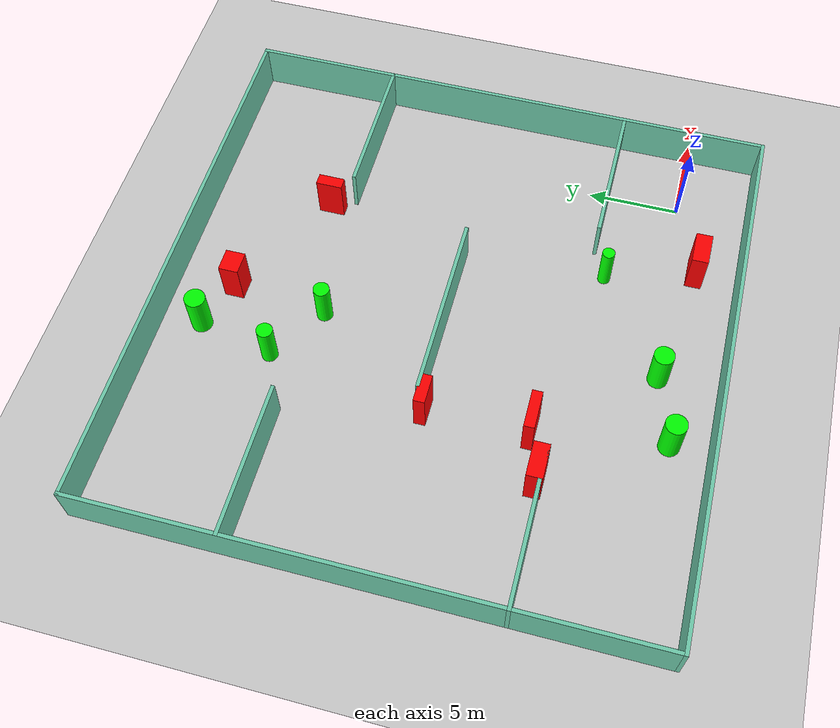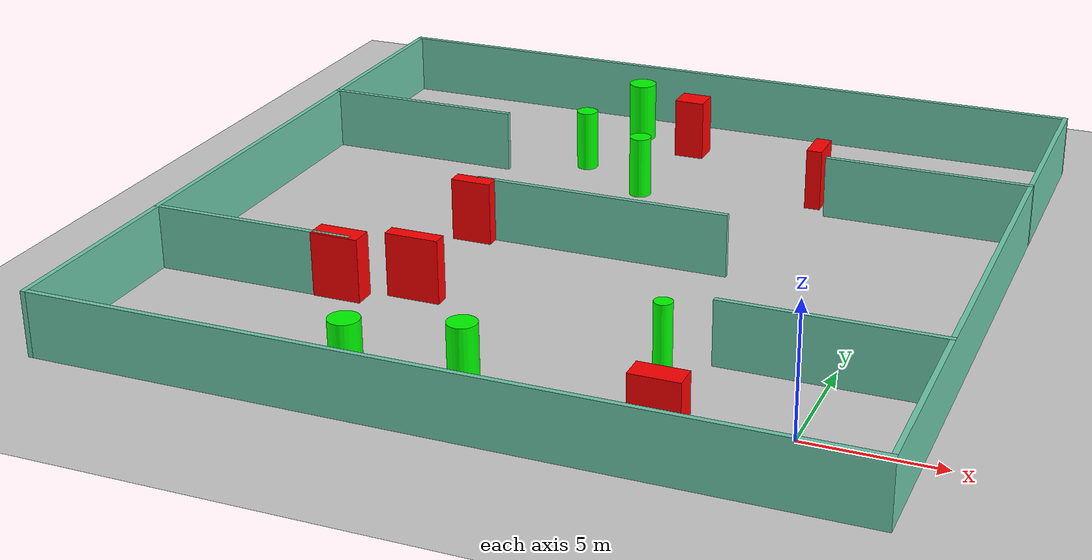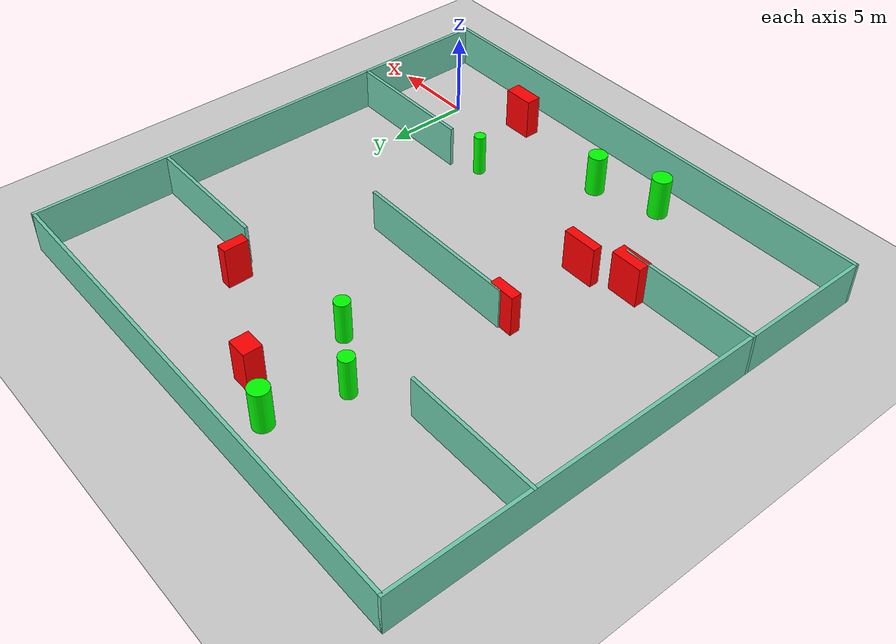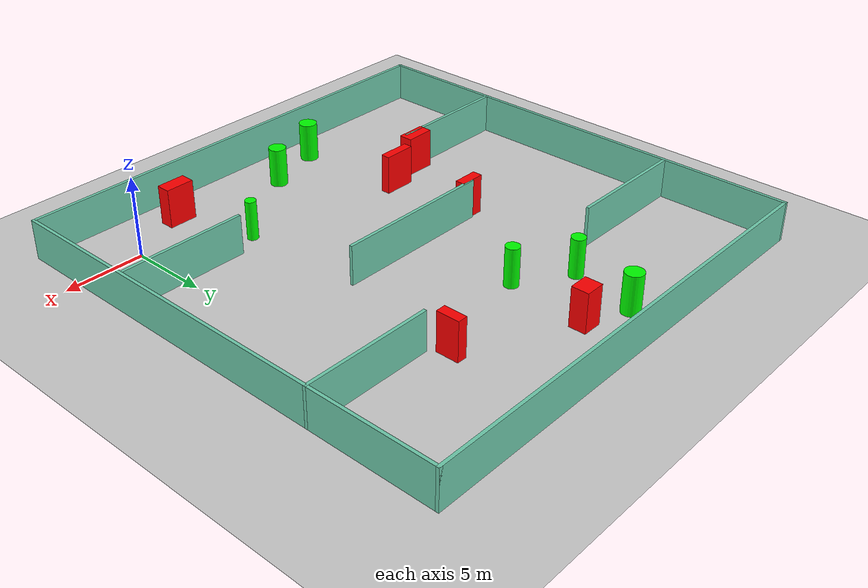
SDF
<sdf version="1.7">
 <world name="default">
  <light name="sun" type="directional">
   <pose>0 0 10 0 -0 0</pose>
   <diffuse>0.8 0.8 0.8 1</diffuse>
   <specular>0.2 0.2 0.2 1</specular>
   <attenuation>
    <range>1000</range>
    <constant>0.9</constant>
    <linear>0.01</linear>
    <quadratic>0.001</quadratic>
   </attenuation>
   <direction>-0.5 0.1 -0.9</direction>
   <spot><inner_angle>0</inner_angle><outer_angle>0</outer_angle><falloff>0</falloff></spot>
  </light>
  <model name="ground_plane">
   <static>1</static>
   <link name="link">
    <collision name="collision">
     <geometry><plane><normal>0 0 1</normal><size>100 100</size></plane></geometry>
     <surface>
      <contact><collide_bitmask>65535</collide_bitmask></contact>
      <friction><ode><mu>100</mu><mu2>50</mu2></ode></friction>
     </surface>
    </collision>
    <visual name="visual">
     <cast_shadows>0</cast_shadows>
     <geometry><plane><normal>0 0 1</normal><size>100 100</size></plane></geometry>
     <material>
      <script><uri>file://media/materials/scripts/gazebo.material</uri><name>Gazebo/Grey</name></script>
     </material>
    </visual>
   </link>
  </model>
  <gravity>0 0 -9.8</gravity>
  <magnetic_field>6e-06 2.3e-05 -4.2e-05</magnetic_field>
  <atmosphere type="adiabatic"/>
  <physics type="ode">
   <max_step_size>0.001</max_step_size>
   <real_time_factor>1</real_time_factor>
   <real_time_update_rate>1000</real_time_update_rate>
  </physics>
  <scene><ambient>0.4 0.4 0.4 1</ambient><background>0.7 0.7 0.7 1</background><shadows>1</shadows></scene>
  <spherical_coordinates>
   <surface_model>EARTH_WGS84</surface_model>
   <latitude_deg>0</latitude_deg>
   <longitude_deg>0</longitude_deg>
   <elevation>0</elevation>
   <heading_deg>0</heading_deg>
  </spherical_coordinates>
  <model name="my_base_walls">
   <link name="Wall_10">
    <collision name="Wall_10_Collision">
     <geometry><box><size>8.2 0.2 2.5</size></box></geometry>
     <pose>0 0 1.25 0 -0 0</pose>
    </collision>
    <visual name="Wall_10_Visual">
     <pose>0 0 1.25 0 -0 0</pose>
     <geometry><box><size>8.2 0.2 2.5</size></box></geometry>
     <material>
      <script><uri>file://media/materials/scripts/gazebo.material</uri><name>Gazebo/Grey</name></script>
      <ambient>0.435294 0.796078 0.67451 1</ambient>
     </material>
     <meta><layer>0</layer></meta>
    </visual>
    <pose>-11 -7 0 0 -0 0</pose>
   </link>
   <link name="Wall_12">
    <collision name="Wall_12_Collision">
     <geometry><box><size>8.2 0.2 2.5</size></box></geometry>
     <pose>0 0 1.25 0 -0 0</pose>
    </collision>
    <visual name="Wall_12_Visual">
     <pose>0 0 1.25 0 -0 0</pose>
     <geometry><box><size>8.2 0.2 2.5</size></box></geometry>
     <material>
      <script><uri>file://media/materials/scripts/gazebo.material</uri><name>Gazebo/Grey</name></script>
      <ambient>0.435294 0.796078 0.67451 1</ambient>
     </material>
     <meta><layer>0</layer></meta>
    </visual>
    <pose>-11 7 0 0 -0 0</pose>
   </link>
   <link name="Wall_14">
    <collision name="Wall_14_Collision">
     <geometry><box><size>8.2 0.2 2.5</size></box></geometry>
     <pose>0 0 1.25 0 -0 0</pose>
    </collision>
    <visual name="Wall_14_Visual">
     <pose>0 0 1.25 0 -0 0</pose>
     <geometry><box><size>8.2 0.2 2.5</size></box></geometry>
     <material>
      <script><uri>file://media/materials/scripts/gazebo.material</uri><name>Gazebo/Grey</name></script>
      <ambient>0.435294 0.796078 0.67451 1</ambient>
     </material>
     <meta><layer>0</layer></meta>
    </visual>
    <pose>11 7 0 0 -0 3.14159</pose>
   </link>
   <link name="Wall_16">
    <collision name="Wall_16_Collision">
     <geometry><box><size>10.2 0.2 2.5</size></box></geometry>
     <pose>0 0 1.25 0 -0 0</pose>
    </collision>
    <visual name="Wall_16_Visual">
     <pose>0 0 1.25 0 -0 0</pose>
     <geometry><box><size>10.2 0.2 2.5</size></box></geometry>
     <material>
      <script><uri>file://media/materials/scripts/gazebo.material</uri><name>Gazebo/Grey</name></script>
      <ambient>0.435294 0.796078 0.67451 1</ambient>
     </material>
     <meta><layer>0</layer></meta>
    </visual>
    <pose>0 0 0 0 -0 3.14159</pose>
   </link>
   <link name="Wall_2">
    <collision name="Wall_2_Collision">
     <geometry><box><size>30.2 0.2 2.5</size></box></geometry>
     <pose>0 0 1.25 0 -0 0</pose>
    </collision>
    <visual name="Wall_2_Visual">
     <pose>0 0 1.25 0 -0 0</pose>
     <geometry><box><size>30.2 0.2 2.5</size></box></geometry>
     <material>
      <script><uri>file://media/materials/scripts/gazebo.material</uri><name>Gazebo/Grey</name></script>
      <ambient>0.435294 0.796078 0.67451 1</ambient>
     </material>
     <meta><layer>0</layer></meta>
    </visual>
    <pose>0 -15 0 0 -0 3.14159</pose>
   </link>
   <link name="Wall_3">
    <collision name="Wall_3_Collision">
     <geometry><box><size>30.2 0.2 2.5</size></box></geometry>
     <pose>0 0 1.25 0 -0 0</pose>
    </collision>
    <visual name="Wall_3_Visual">
     <pose>0 0 1.25 0 -0 0</pose>
     <geometry><box><size>30.2 0.2 2.5</size></box></geometry>
     <material>
      <script><uri>file://media/materials/scripts/gazebo.material</uri><name>Gazebo/Grey</name></script>
      <ambient>0.435294 0.796078 0.67451 1</ambient>
     </material>
     <meta><layer>0</layer></meta>
    </visual>
    <pose>-15 0 0 0 -0 1.5708</pose>
   </link>
   <link name="Wall_4">
    <collision name="Wall_4_Collision">
     <geometry><box><size>30.2 0.2 2.5</size></box></geometry>
     <pose>0 0 1.25 0 -0 0</pose>
    </collision>
    <visual name="Wall_4_Visual">
     <pose>0 0 1.25 0 -0 0</pose>
     <geometry><box><size>30.2 0.2 2.5</size></box></geometry>
     <material>
      <script><uri>file://media/materials/scripts/gazebo.material</uri><name>Gazebo/Grey</name></script>
      <ambient>0.435294 0.796078 0.67451 1</ambient>
     </material>
     <meta><layer>0</layer></meta>
    </visual>
    <pose>0 15 0 0 -0 0</pose>
   </link>
   <link name="Wall_6">
    <collision name="Wall_6_Collision">
     <geometry><box><size>30.2 0.2 2.5</size></box></geometry>
     <pose>0 0 1.25 0 -0 0</pose>
    </collision>
    <visual name="Wall_6_Visual">
     <pose>0 0 1.25 0 -0 0</pose>
     <geometry><box><size>30.2 0.2 2.5</size></box></geometry>
     <material>
      <script><uri>file://media/materials/scripts/gazebo.material</uri><name>Gazebo/Grey</name></script>
      <ambient>0.435294 0.796078 0.67451 1</ambient>
     </material>
     <meta><layer>0</layer></meta>
    </visual>
    <pose>15 0 0 0 -0 1.5708</pose>
   </link>
   <link name="Wall_8">
    <collision name="Wall_8_Collision">
     <geometry><box><size>8.2 0.2 2.5</size></box></geometry>
     <pose>0 0 1.25 0 -0 0</pose>
    </collision>
    <visual name="Wall_8_Visual">
     <pose>0 0 1.25 0 -0 0</pose>
     <geometry><box><size>8.2 0.2 2.5</size></box></geometry>
     <material>
      <script><uri>file://media/materials/scripts/gazebo.material</uri><name>Gazebo/Grey</name></script>
      <ambient>0.435294 0.796078 0.67451 1</ambient>
     </material>
     <meta><layer>0</layer></meta>
    </visual>
    <pose>11 -7 0 0 -0 3.14159</pose>
   </link>
   <static>1</static>
   <pose>-11 11 0 0 -0 0</pose>
  </model>
  <model name="cylinder1">
   <static>1</static>
   <link name="link">
    <inertial>
     <mass>1</mass>
     <inertia><ixx>0.5</ixx><ixy>0</ixy><ixz>0</ixz><iyy>0.5</iyy><iyz>0</iyz><izz>1</izz></inertia>
    </inertial>
    <collision name="collision">
     <geometry><cylinder><radius>0.5473860534265039</radius><length>2.5</length></cylinder></geometry>
    </collision>
    <visual name="visual">
     <geometry><cylinder><radius>0.5473860534265039</radius><length>2.5</length></cylinder></geometry>
     <material>
      <ambient>0 1 0 1</ambient>
      <diffuse>0 1 0 1</diffuse>
      <specular>0.1 0.1 0.1 1</specular>
      <emissive>0 0 0 0</emissive>
     </material>
    </visual>
   </link>
   <pose>-11.198366710735112 -0.71078137838342 1.25 0 0 0</pose>
  </model>
  <model name="cylinder2">
   <static>1</static>
   <link name="link">
    <inertial>
     <mass>1</mass>
     <inertia><ixx>0.5</ixx><ixy>0</ixy><ixz>0</ixz><iyy>0.5</iyy><iyz>0</iyz><izz>1</izz></inertia>
    </inertial>
    <collision name="collision">
     <geometry><cylinder><radius>0.34185696071729677</radius><length>2.5</length></cylinder></geometry>
    </collision>
    <visual name="visual">
     <geometry><cylinder><radius>0.34185696071729677</radius><length>2.5</length></cylinder></geometry>
     <material>
      <ambient>0 1 0 1</ambient>
      <diffuse>0 1 0 1</diffuse>
      <specular>0.1 0.1 0.1 1</specular>
      <emissive>0 0 0 0</emissive>
     </material>
    </visual>
   </link>
   <pose>-5.614562855217319 3.1844936030082582 1.25 0 0 0</pose>
  </model>
  <model name="cylinder3">
   <static>1</static>
   <link name="link">
    <inertial>
     <mass>1</mass>
     <inertia><ixx>0.5</ixx><ixy>0</ixy><ixz>0</ixz><iyy>0.5</iyy><iyz>0</iyz><izz>1</izz></inertia>
    </inertial>
    <collision name="collision">
     <geometry><cylinder><radius>0.5744969094217025</radius><length>2.5</length></cylinder></geometry>
    </collision>
    <visual name="visual">
     <geometry><cylinder><radius>0.5744969094217025</radius><length>2.5</length></cylinder></geometry>
     <material>
      <ambient>0 1 0 1</ambient>
      <diffuse>0 1 0 1</diffuse>
      <specular>0.1 0.1 0.1 1</specular>
      <emissive>0 0 0 0</emissive>
     </material>
    </visual>
   </link>
   <pose>-14.927111335004843 -1.891333806187764 1.25 0 0 0</pose>
  </model>
  <model name="cylinder4">
   <static>1</static>
   <link name="link">
    <inertial>
     <mass>1</mass>
     <inertia><ixx>0.5</ixx><ixy>0</ixy><ixz>0</ixz><iyy>0.5</iyy><iyz>0</iyz><izz>1</izz></inertia>
    </inertial>
    <collision name="collision">
     <geometry><cylinder><radius>0.4389199961474708</radius><length>2.5</length></cylinder></geometry>
    </collision>
    <visual name="visual">
     <geometry><cylinder><radius>0.4389199961474708</radius><length>2.5</length></cylinder></geometry>
     <material>
      <ambient>0 1 0 1</ambient>
      <diffuse>0 1 0 1</diffuse>
      <specular>0.1 0.1 0.1 1</specular>
      <emissive>0 0 0 0</emissive>
     </material>
    </visual>
   </link>
   <pose>-11.77079452944187 17.450038414546185 1.25 0 0 0</pose>
  </model>
  <model name="cylinder5">
   <static>1</static>
   <link name="link">
    <inertial>
     <mass>1</mass>
     <inertia><ixx>0.5</ixx><ixy>0</ixy><ixz>0</ixz><iyy>0.5</iyy><iyz>0</iyz><izz>1</izz></inertia>
    </inertial>
    <collision name="collision">
     <geometry><cylinder><radius>0.436799760747705</radius><length>2.5</length></cylinder></geometry>
    </collision>
    <visual name="visual">
     <geometry><cylinder><radius>0.436799760747705</radius><length>2.5</length></cylinder></geometry>
     <material>
      <ambient>0 1 0 1</ambient>
      <diffuse>0 1 0 1</diffuse>
      <specular>0.1 0.1 0.1 1</specular>
      <emissive>0 0 0 0</emissive>
     </material>
    </visual>
   </link>
   <pose>-14.932525912769524 19.508980875769478 1.25 0 0 0</pose>
  </model>
  <model name="cylinder6">
   <static>1</static>
   <link name="link">
    <inertial>
     <mass>1</mass>
     <inertia><ixx>0.5</ixx><ixy>0</ixy><ixz>0</ixz><iyy>0.5</iyy><iyz>0</iyz><izz>1</izz></inertia>
    </inertial>
    <collision name="collision">
     <geometry><cylinder><radius>0.5702471891103855</radius><length>2.5</length></cylinder></geometry>
    </collision>
    <visual name="visual">
     <geometry><cylinder><radius>0.5702471891103855</radius><length>2.5</length></cylinder></geometry>
     <material>
      <ambient>0 1 0 1</ambient>
      <diffuse>0 1 0 1</diffuse>
      <specular>0.1 0.1 0.1 1</specular>
      <emissive>0 0 0 0</emissive>
     </material>
    </visual>
   </link>
   <pose>-13.99447363461349 23.710675535770093 1.25 0 0 0</pose>
  </model>
  <model name="box1">
   <static>1</static>
   <link name="link">
    <inertial>
     <mass>1</mass>
     <inertia><ixx>0.083</ixx><ixy>0</ixy><ixz>0</ixz><iyy>0.083</iyy><iyz>0</iyz><izz>0.083</izz></inertia>
    </inertial>
    <collision name="collision">
     <geometry><box><size>1.8916985361297345 0.8594850409159238 2.5</size></box></geometry>
    </collision>
    <visual name="visual">
     <geometry><box><size>1.8916985361297345 0.8594850409159238 2.5</size></box></geometry>
     <material>
      <ambient>1 0 0 1</ambient>
      <diffuse>1 0 0 1</diffuse>
      <specular>0.1 0.1 0.1 1</specular>
      <emissive>0 0 0 0</emissive>
     </material>
    </visual>
    <sensor name="my_contact" type="contact">
     <contact><collision>box_collision</collision><topic>__default_topic__</topic></contact>
    </sensor>
   </link>
   <pose>-18.49741901184596 4.279902882316446 1.25 0 0 0</pose>
  </model>
  <model name="box2">
   <static>1</static>
   <link name="link">
    <inertial>
     <mass>1</mass>
     <inertia><ixx>0.083</ixx><ixy>0</ixy><ixz>0</ixz><iyy>0.083</iyy><iyz>0</iyz><izz>0.083</izz></inertia>
    </inertial>
    <collision name="collision">
     <geometry><box><size>0.6311157264048861 1.4523810220514752 2.5</size></box></geometry>
    </collision>
    <visual name="visual">
     <geometry><box><size>0.6311157264048861 1.4523810220514752 2.5</size></box></geometry>
     <material>
      <ambient>1 0 0 1</ambient>
      <diffuse>1 0 0 1</diffuse>
      <specular>0.1 0.1 0.1 1</specular>
      <emissive>0 0 0 0</emissive>
     </material>
    </visual>
    <sensor name="my_contact" type="contact">
     <contact><collision>box_collision</collision><topic>__default_topic__</topic></contact>
    </sensor>
   </link>
   <pose>-4.7153408934630185 19.182743381346175 1.25 0 0 0</pose>
  </model>
  <model name="box3">
   <static>1</static>
   <link name="link">
    <inertial>
     <mass>1</mass>
     <inertia><ixx>0.083</ixx><ixy>0</ixy><ixz>0</ixz><iyy>0.083</iyy><iyz>0</iyz><izz>0.083</izz></inertia>
    </inertial>
    <collision name="collision">
     <geometry><box><size>1.5980850610692745 0.6096325103825881 2.5</size></box></geometry>
    </collision>
    <visual name="visual">
     <geometry><box><size>1.5980850610692745 0.6096325103825881 2.5</size></box></geometry>
     <material>
      <ambient>1 0 0 1</ambient>
      <diffuse>1 0 0 1</diffuse>
      <specular>0.1 0.1 0.1 1</specular>
      <emissive>0 0 0 0</emissive>
     </material>
    </visual>
    <sensor name="my_contact" type="contact">
     <contact><collision>box_collision</collision><topic>__default_topic__</topic></contact>
    </sensor>
   </link>
   <pose>-16.127522921270153 10.705548038190567 1.25 0 0 0</pose>
  </model>
  <model name="box4">
   <static>1</static>
   <link name="link">
    <inertial>
     <mass>1</mass>
     <inertia><ixx>0.083</ixx><ixy>0</ixy><ixz>0</ixz><iyy>0.083</iyy><iyz>0</iyz><izz>0.083</izz></inertia>
    </inertial>
    <collision name="collision">
     <geometry><box><size>1.2374385359155635 1.0766929147810929 2.5</size></box></geometry>
    </collision>
    <visual name="visual">
     <geometry><box><size>1.2374385359155635 1.0766929147810929 2.5</size></box></geometry>
     <material>
      <ambient>1 0 0 1</ambient>
      <diffuse>1 0 0 1</diffuse>
      <specular>0.1 0.1 0.1 1</specular>
      <emissive>0 0 0 0</emissive>
     </material>
    </visual>
    <sensor name="my_contact" type="contact">
     <contact><collision>box_collision</collision><topic>__default_topic__</topic></contact>
    </sensor>
   </link>
   <pose>-11.275290084220654 22.63143919259076 1.25 0 0 0</pose>
  </model>
  <model name="box5">
   <static>1</static>
   <link name="link">
    <inertial>
     <mass>1</mass>
     <inertia><ixx>0.083</ixx><ixy>0</ixy><ixz>0</ixz><iyy>0.083</iyy><iyz>0</iyz><izz>0.083</izz></inertia>
    </inertial>
    <collision name="collision">
     <geometry><box><size>2.0836690233248456 0.5671436308434223 2.5</size></box></geometry>
    </collision>
    <visual name="visual">
     <geometry><box><size>2.0836690233248456 0.5671436308434223 2.5</size></box></geometry>
     <material>
      <ambient>1 0 0 1</ambient>
      <diffuse>1 0 0 1</diffuse>
      <specular>0.1 0.1 0.1 1</specular>
      <emissive>0 0 0 0</emissive>
     </material>
    </visual>
    <sensor name="my_contact" type="contact">
     <contact><collision>box_collision</collision><topic>__default_topic__</topic></contact>
    </sensor>
   </link>
   <pose>-15.865873852357812 5.10097101556344 1.25 0 0 0</pose>
  </model>
  <model name="box6">
   <static>1</static>
   <link name="link">
    <inertial>
     <mass>1</mass>
     <inertia><ixx>0.083</ixx><ixy>0</ixy><ixz>0</ixz><iyy>0.083</iyy><iyz>0</iyz><izz>0.083</izz></inertia>
    </inertial>
    <collision name="collision">
     <geometry><box><size>1.8216012418335472 0.8945727065141151 2.5</size></box></geometry>
    </collision>
    <visual name="visual">
     <geometry><box><size>1.8216012418335472 0.8945727065141151 2.5</size></box></geometry>
     <material>
      <ambient>1 0 0 1</ambient>
      <diffuse>1 0 0 1</diffuse>
      <specular>0.1 0.1 0.1 1</specular>
      <emissive>0 0 0 0</emissive>
     </material>
    </visual>
    <sensor name="my_contact" type="contact">
     <contact><collision>box_collision</collision><topic>__default_topic__</topic></contact>
    </sensor>
   </link>
   <pose>-4.0119682254208495 -1.6589221241969798 1.25 0 0 0</pose>
  </model>
 </world>
</sdf>
